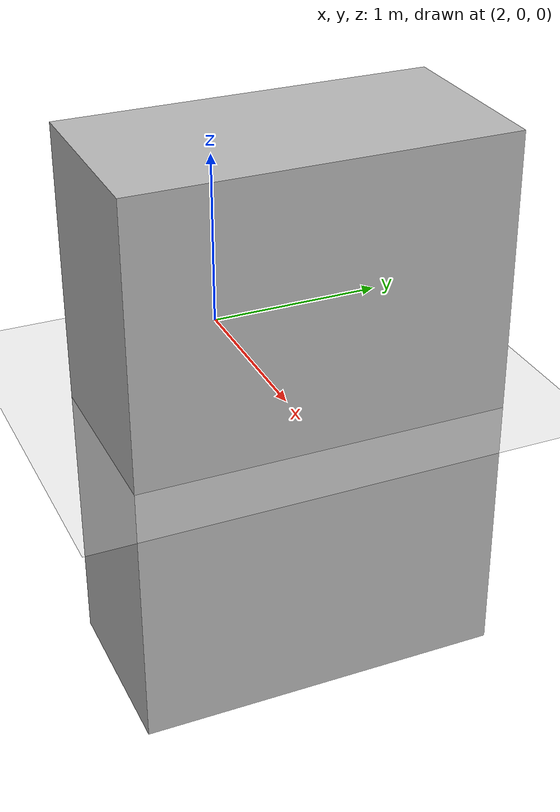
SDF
<?xml version="1.0" ?>
<sdf version="1.5">
  <world name="default">
    <!-- A global light source -->
    <include>
      <uri>model://sun</uri>
    </include>
    <!-- A ground plane -->
    <include>
      <uri>model://ground_plane</uri>
    </include>

    <model name='box_obstacle'>
      <pose>3 0 0 0 0 0</pose> <!-- Position and orientation of the box -->
      <link name='link'>
        <inertial>
          <mass>1.0</mass>
          <inertia> <!-- Inertia matrix for a solid box, assuming uniform mass distribution -->
            <ixx>0.083</ixx>
            <ixy>0</ixy>
            <ixz>0</ixz>
            <iyy>0.083</iyy>
            <iyz>0</iyz>
            <izz>0.083</izz>
          </inertia>
        </inertial>
        <collision name='collision'>
          <geometry>
            <box>
              <size>1 2 3</size> <!-- Size of the box -->
            </box>
          </geometry>
        </collision>
        <visual name='visual'>
          <geometry>
            <box>
              <size>1 2 3</size> <!-- Size of the box -->
            </box>
          </geometry>
        </visual>
      </link>
    </model>

    <physics name='default_physics' default='0' type='ode'>
      <gravity>0 0 -9.8066</gravity>
      <ode>
        <solver>
          <type>quick</type>
          <iters>10</iters>
          <sor>1.3</sor>
          <use_dynamic_moi_rescaling>0</use_dynamic_moi_rescaling>
        </solver>
        <constraints>
          <cfm>0</cfm>
          <erp>0.2</erp>
          <contact_max_correcting_vel>100</contact_max_correcting_vel>
          <contact_surface_layer>0.001</contact_surface_layer>
        </constraints>
      </ode>
      <max_step_size>0.004</max_step_size>
      <real_time_factor>1</real_time_factor>
      <real_time_update_rate>250</real_time_update_rate>
      <magnetic_field>6.0e-6 2.3e-5 -4.2e-5</magnetic_field>
    </physics>
  </world>
</sdf>
